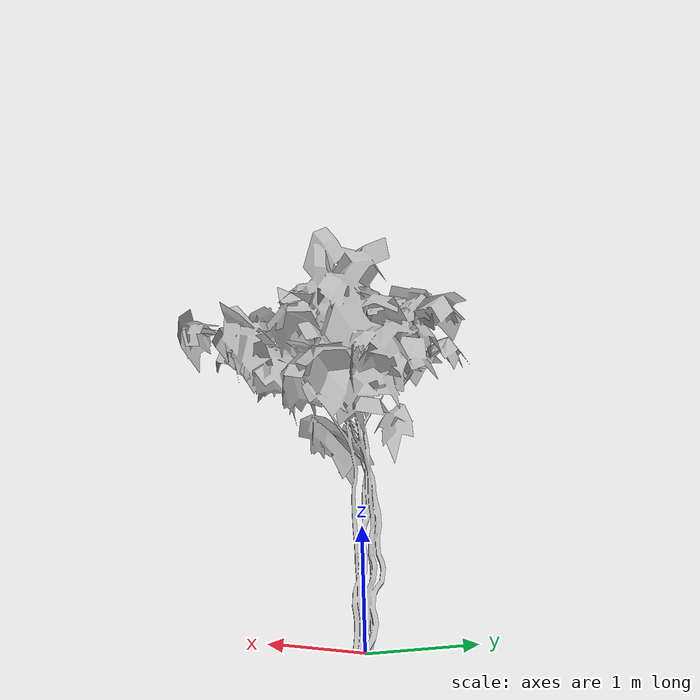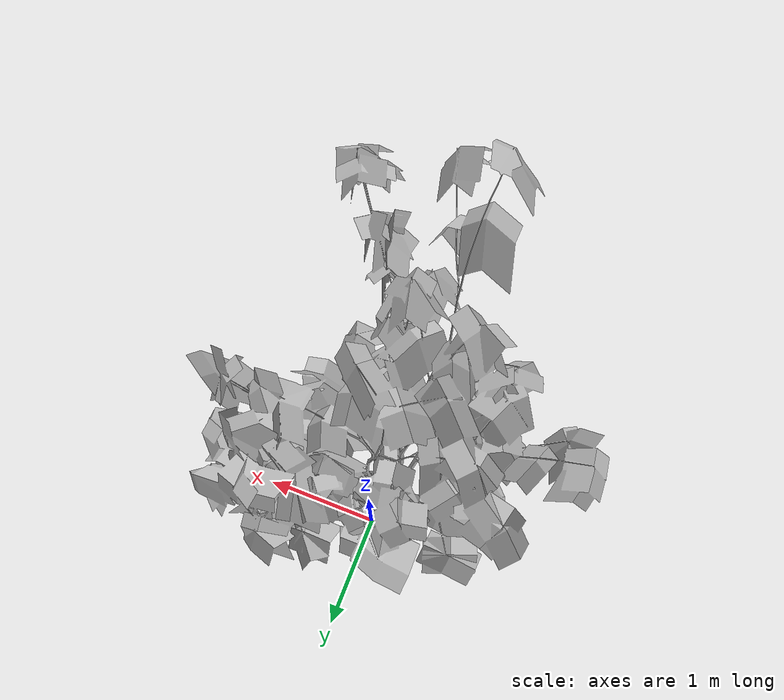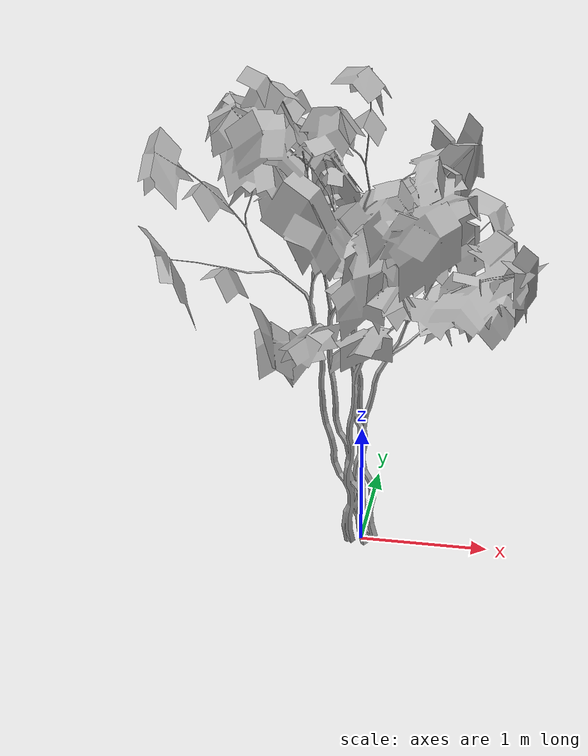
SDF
<?xml version="1.0" ?>
<sdf version="1.5">
  <model name="Bush 5">
     <static>true</static>
    <pose frame=''>0 0 0 1.57079 0 0</pose>
    <link name="link">
      <pose frame=''>0 0 0 0 0 0</pose>
      <collision name="collision">
        <geometry>
          <mesh>
            <scale>5 5 5</scale>
            <uri>model://bush_5/meshes/bush_5.obj</uri>
          </mesh>
        </geometry>
      </collision>
      <visual name="visual">
        <geometry>
          <mesh>

            <scale>5 5 5</scale>
            <uri>model://bush_5/meshes/bush_5.obj</uri>
          </mesh>
        </geometry>
      </visual>
    </link>
  </model>
</sdf>
